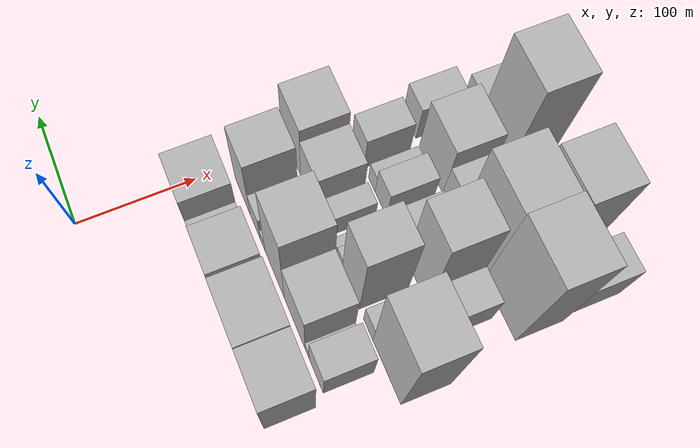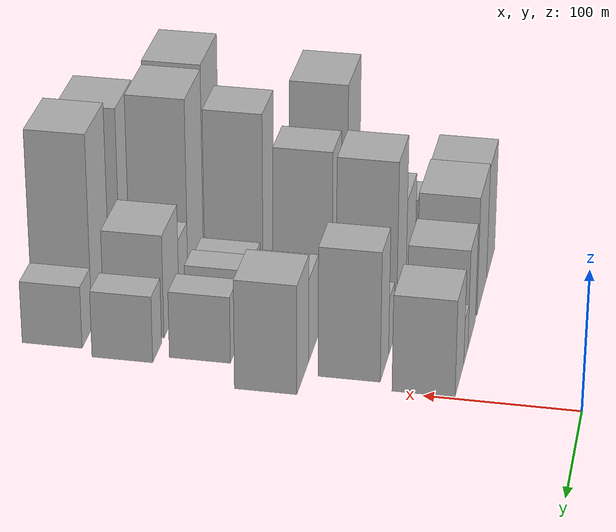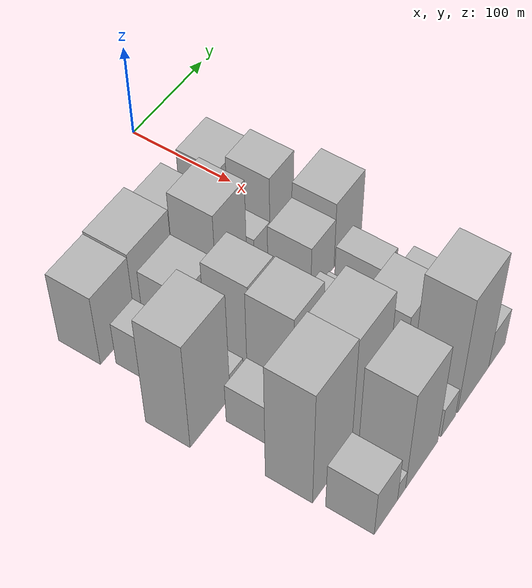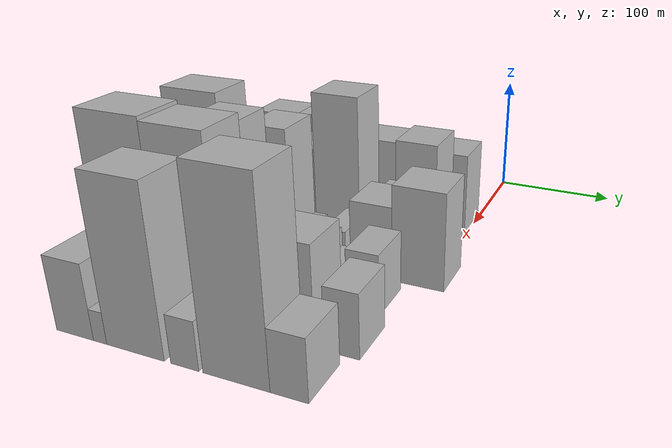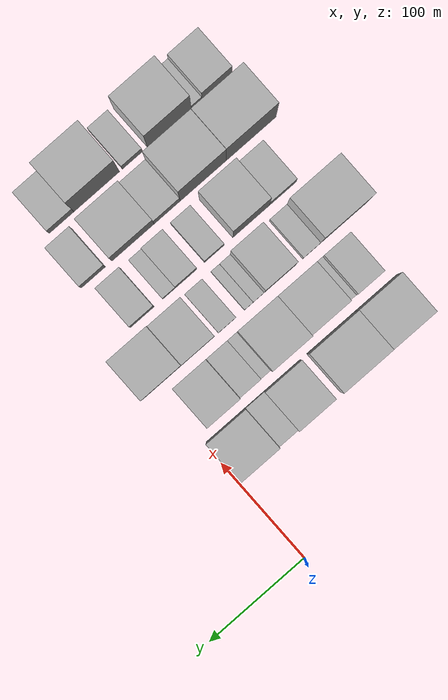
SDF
<sdf version="1.6">
 <world name="default">
  <model name="building_22">
   <static>1</static>
   <pose>100.0000 -179.8507 0 0.000000 0.000000 0.000000</pose>
   <link name="link">
    <pose>0 0 42.00 0 0 0</pose>
    <collision name="collision"><geometry><box><size>40.0000 44.0624 84.0000</size></box></geometry></collision>
    <visual name="visual">
     <cast_shadows>0</cast_shadows>
     <geometry><box><size>40.0000 44.0624 84.0000</size></box></geometry>
     <material>
      <script>
       <uri>model://HANNAS_wall/materials/scripts</uri>
       <uri>model://HANNAS_wall/materials/textures</uri>
       <name>vrc/HANNAS_wall</name>
      </script>
     </material>
    </visual>
   </link>
  </model>
  <model name="building_23">
   <static>1</static>
   <pose>100.0000 -132.6121 0 0.000000 0.000000 0.000000</pose>
   <link name="link">
    <pose>0 0 43.50 0 0 0</pose>
    <collision name="collision"><geometry><box><size>40.0000 50.4148 87.0000</size></box></geometry></collision>
    <visual name="visual">
     <cast_shadows>0</cast_shadows>
     <geometry><box><size>40.0000 50.4148 87.0000</size></box></geometry>
     <material>
      <script>
       <uri>model://HANNAS_wall/materials/scripts</uri>
       <uri>model://HANNAS_wall/materials/textures</uri>
       <name>vrc/HANNAS_wall</name>
      </script>
     </material>
    </visual>
   </link>
  </model>
  <model name="building_24">
   <static>1</static>
   <pose>100.0000 -81.5490 0 0.000000 0.000000 0.000000</pose>
   <link name="link">
    <pose>0 0 36.00 0 0 0</pose>
    <collision name="collision"><geometry><box><size>40.0000 37.7114 72.0000</size></box></geometry></collision>
    <visual name="visual">
     <cast_shadows>0</cast_shadows>
     <geometry><box><size>40.0000 37.7114 72.0000</size></box></geometry>
     <material>
      <script>
       <uri>model://HANNAS_wall/materials/scripts</uri>
       <uri>model://HANNAS_wall/materials/textures</uri>
       <name>vrc/HANNAS_wall</name>
      </script>
     </material>
    </visual>
   </link>
  </model>
  <model name="building_25">
   <static>1</static>
   <pose>100.0000 -52.9410 0 0.000000 0.000000 0.000000</pose>
   <link name="link">
    <pose>0 0 16.50 0 0 0</pose>
    <collision name="collision"><geometry><box><size>40.0000 19.5046 33.0000</size></box></geometry></collision>
    <visual name="visual">
     <cast_shadows>0</cast_shadows>
     <geometry><box><size>40.0000 19.5046 33.0000</size></box></geometry>
     <material>
      <script>
       <uri>model://HANNAS_wall/materials/scripts</uri>
       <uri>model://HANNAS_wall/materials/textures</uri>
       <name>vrc/HANNAS_wall</name>
      </script>
     </material>
    </visual>
   </link>
  </model>
  <model name="building_26">
   <static>1</static>
   <pose>100.0000 -22.6887 0 0.000000 0.000000 0.000000</pose>
   <link name="link">
    <pose>0 0 34.50 0 0 0</pose>
    <collision name="collision"><geometry><box><size>40.0000 40.9999 69.0000</size></box></geometry></collision>
    <visual name="visual">
     <cast_shadows>0</cast_shadows>
     <geometry><box><size>40.0000 40.9999 69.0000</size></box></geometry>
     <material>
      <script>
       <uri>model://HANNAS_wall/materials/scripts</uri>
       <uri>model://HANNAS_wall/materials/textures</uri>
       <name>vrc/HANNAS_wall</name>
      </script>
     </material>
    </visual>
   </link>
  </model>
  <model name="building_69">
   <static>1</static>
   <pose>149.0000 -180.6209 0 0.000000 0.000000 0.000000</pose>
   <link name="link">
    <pose>0 0 25.50 0 0 0</pose>
    <collision name="collision"><geometry><box><size>40.0000 27.4931 51.0000</size></box></geometry></collision>
    <visual name="visual">
     <cast_shadows>0</cast_shadows>
     <geometry><box><size>40.0000 27.4931 51.0000</size></box></geometry>
     <material>
      <script>
       <uri>model://HANNAS_wall/materials/scripts</uri>
       <uri>model://HANNAS_wall/materials/textures</uri>
       <name>vrc/HANNAS_wall</name>
      </script>
     </material>
    </visual>
   </link>
  </model>
  <model name="building_70">
   <static>1</static>
   <pose>149.0000 -162.8369 0 0.000000 0.000000 0.000000</pose>
   <link name="link">
    <pose>0 0 9.00 0 0 0</pose>
    <collision name="collision"><geometry><box><size>40.0000 8.0749 18.0000</size></box></geometry></collision>
    <visual name="visual">
     <cast_shadows>0</cast_shadows>
     <geometry><box><size>40.0000 8.0749 18.0000</size></box></geometry>
     <material>
      <script>
       <uri>model://HANNAS_wall/materials/scripts</uri>
       <uri>model://HANNAS_wall/materials/textures</uri>
       <name>vrc/HANNAS_wall</name>
      </script>
     </material>
    </visual>
   </link>
  </model>
  <model name="building_71">
   <static>1</static>
   <pose>149.0000 -138.1704 0 0.000000 0.000000 0.000000</pose>
   <link name="link">
    <pose>0 0 37.50 0 0 0</pose>
    <collision name="collision"><geometry><box><size>40.0000 41.2582 75.0000</size></box></geometry></collision>
    <visual name="visual">
     <cast_shadows>0</cast_shadows>
     <geometry><box><size>40.0000 41.2582 75.0000</size></box></geometry>
     <material>
      <script>
       <uri>model://HANNAS_wall/materials/scripts</uri>
       <uri>model://HANNAS_wall/materials/textures</uri>
       <name>vrc/HANNAS_wall</name>
      </script>
     </material>
    </visual>
   </link>
  </model>
  <model name="building_72">
   <static>1</static>
   <pose>149.0000 -97.4613 0 0.000000 0.000000 0.000000</pose>
   <link name="link">
    <pose>0 0 61.50 0 0 0</pose>
    <collision name="collision"><geometry><box><size>40.0000 40.1599 123.0000</size></box></geometry></collision>
    <visual name="visual">
     <cast_shadows>0</cast_shadows>
     <geometry><box><size>40.0000 40.1599 123.0000</size></box></geometry>
     <material>
      <script>
       <uri>model://HANNAS_wall/materials/scripts</uri>
       <uri>model://HANNAS_wall/materials/textures</uri>
       <name>vrc/HANNAS_wall</name>
      </script>
     </material>
    </visual>
   </link>
  </model>
  <model name="building_73">
   <static>1</static>
   <pose>149.0000 -72.3114 0 0.000000 0.000000 0.000000</pose>
   <link name="link">
    <pose>0 0 10.50 0 0 0</pose>
    <collision name="collision"><geometry><box><size>40.0000 10.1401 21.0000</size></box></geometry></collision>
    <visual name="visual">
     <cast_shadows>0</cast_shadows>
     <geometry><box><size>40.0000 10.1401 21.0000</size></box></geometry>
     <material>
      <script>
       <uri>model://HANNAS_wall/materials/scripts</uri>
       <uri>model://HANNAS_wall/materials/textures</uri>
       <name>vrc/HANNAS_wall</name>
      </script>
     </material>
    </visual>
   </link>
  </model>
  <model name="building_74">
   <static>1</static>
   <pose>149.0000 -56.3199 0 0.000000 0.000000 0.000000</pose>
   <link name="link">
    <pose>0 0 21.00 0 0 0</pose>
    <collision name="collision"><geometry><box><size>40.0000 21.8428 42.0000</size></box></geometry></collision>
    <visual name="visual">
     <cast_shadows>0</cast_shadows>
     <geometry><box><size>40.0000 21.8428 42.0000</size></box></geometry>
     <material>
      <script>
       <uri>model://HANNAS_wall/materials/scripts</uri>
       <uri>model://HANNAS_wall/materials/textures</uri>
       <name>vrc/HANNAS_wall</name>
      </script>
     </material>
    </visual>
   </link>
  </model>
  <model name="building_75">
   <static>1</static>
   <pose>149.0000 -28.4880 0 0.000000 0.000000 0.000000</pose>
   <link name="link">
    <pose>0 0 46.50 0 0 0</pose>
    <collision name="collision"><geometry><box><size>40.0000 33.8210 93.0000</size></box></geometry></collision>
    <visual name="visual">
     <cast_shadows>0</cast_shadows>
     <geometry><box><size>40.0000 33.8210 93.0000</size></box></geometry>
     <material>
      <script>
       <uri>model://HANNAS_wall/materials/scripts</uri>
       <uri>model://HANNAS_wall/materials/textures</uri>
       <name>vrc/HANNAS_wall</name>
      </script>
     </material>
    </visual>
   </link>
  </model>
  <model name="building_118">
   <static>1</static>
   <pose>198.0000 -197.8509 0 0.000000 0.000000 0.000000</pose>
   <link name="link">
    <pose>0 0 64.50 0 0 0</pose>
    <collision name="collision"><geometry><box><size>40.0000 50.9091 129.0000</size></box></geometry></collision>
    <visual name="visual">
     <cast_shadows>0</cast_shadows>
     <geometry><box><size>40.0000 50.9091 129.0000</size></box></geometry>
     <material>
      <script>
       <uri>model://HANNAS_wall/materials/scripts</uri>
       <uri>model://HANNAS_wall/materials/textures</uri>
       <name>vrc/HANNAS_wall</name>
      </script>
     </material>
    </visual>
   </link>
  </model>
  <model name="building_119">
   <static>1</static>
   <pose>198.0000 -163.4503 0 0.000000 0.000000 0.000000</pose>
   <link name="link">
    <pose>0 0 15.00 0 0 0</pose>
    <collision name="collision"><geometry><box><size>40.0000 17.8922 30.0000</size></box></geometry></collision>
    <visual name="visual">
     <cast_shadows>0</cast_shadows>
     <geometry><box><size>40.0000 17.8922 30.0000</size></box></geometry>
     <material>
      <script>
       <uri>model://HANNAS_wall/materials/scripts</uri>
       <uri>model://HANNAS_wall/materials/textures</uri>
       <name>vrc/HANNAS_wall</name>
      </script>
     </material>
    </visual>
   </link>
  </model>
  <model name="building_120">
   <static>1</static>
   <pose>198.0000 -130.0346 0 0.000000 0.000000 0.000000</pose>
   <link name="link">
    <pose>0 0 54.00 0 0 0</pose>
    <collision name="collision"><geometry><box><size>40.0000 32.9392 108.0000</size></box></geometry></collision>
    <visual name="visual">
     <cast_shadows>0</cast_shadows>
     <geometry><box><size>40.0000 32.9392 108.0000</size></box></geometry>
     <material>
      <script>
       <uri>model://HANNAS_wall/materials/scripts</uri>
       <uri>model://HANNAS_wall/materials/textures</uri>
       <name>vrc/HANNAS_wall</name>
      </script>
     </material>
    </visual>
   </link>
  </model>
  <model name="building_121">
   <static>1</static>
   <pose>198.0000 -107.9346 0 0.000000 0.000000 0.000000</pose>
   <link name="link">
    <pose>0 0 12.00 0 0 0</pose>
    <collision name="collision"><geometry><box><size>40.0000 11.2608 24.0000</size></box></geometry></collision>
    <visual name="visual">
     <cast_shadows>0</cast_shadows>
     <geometry><box><size>40.0000 11.2608 24.0000</size></box></geometry>
     <material>
      <script>
       <uri>model://HANNAS_wall/materials/scripts</uri>
       <uri>model://HANNAS_wall/materials/textures</uri>
       <name>vrc/HANNAS_wall</name>
      </script>
     </material>
    </visual>
   </link>
  </model>
  <model name="building_122">
   <static>1</static>
   <pose>198.0000 -97.7807 0 0.000000 0.000000 0.000000</pose>
   <link name="link">
    <pose>0 0 10.50 0 0 0</pose>
    <collision name="collision"><geometry><box><size>40.0000 9.0470 21.0000</size></box></geometry></collision>
    <visual name="visual">
     <cast_shadows>0</cast_shadows>
     <geometry><box><size>40.0000 9.0470 21.0000</size></box></geometry>
     <material>
      <script>
       <uri>model://HANNAS_wall/materials/scripts</uri>
       <uri>model://HANNAS_wall/materials/textures</uri>
       <name>vrc/HANNAS_wall</name>
      </script>
     </material>
    </visual>
   </link>
  </model>
  <model name="building_123">
   <static>1</static>
   <pose>198.0000 -75.1374 0 0.000000 0.000000 0.000000</pose>
   <link name="link">
    <pose>0 0 16.50 0 0 0</pose>
    <collision name="collision"><geometry><box><size>40.0000 18.2395 33.0000</size></box></geometry></collision>
    <visual name="visual">
     <cast_shadows>0</cast_shadows>
     <geometry><box><size>40.0000 18.2395 33.0000</size></box></geometry>
     <material>
      <script>
       <uri>model://HANNAS_wall/materials/scripts</uri>
       <uri>model://HANNAS_wall/materials/textures</uri>
       <name>vrc/HANNAS_wall</name>
      </script>
     </material>
    </visual>
   </link>
  </model>
  <model name="building_124">
   <static>1</static>
   <pose>198.0000 -44.9687 0 0.000000 0.000000 0.000000</pose>
   <link name="link">
    <pose>0 0 30.00 0 0 0</pose>
    <collision name="collision"><geometry><box><size>40.0000 34.0979 60.0000</size></box></geometry></collision>
    <visual name="visual">
     <cast_shadows>0</cast_shadows>
     <geometry><box><size>40.0000 34.0979 60.0000</size></box></geometry>
     <material>
      <script>
       <uri>model://HANNAS_wall/materials/scripts</uri>
       <uri>model://HANNAS_wall/materials/textures</uri>
       <name>vrc/HANNAS_wall</name>
      </script>
     </material>
    </visual>
   </link>
  </model>
  <model name="building_125">
   <static>1</static>
   <pose>198.0000 -7.3952 0 0.000000 0.000000 0.000000</pose>
   <link name="link">
    <pose>0 0 39.00 0 0 0</pose>
    <collision name="collision"><geometry><box><size>40.0000 41.0492 78.0000</size></box></geometry></collision>
    <visual name="visual">
     <cast_shadows>0</cast_shadows>
     <geometry><box><size>40.0000 41.0492 78.0000</size></box></geometry>
     <material>
      <script>
       <uri>model://HANNAS_wall/materials/scripts</uri>
       <uri>model://HANNAS_wall/materials/textures</uri>
       <name>vrc/HANNAS_wall</name>
      </script>
     </material>
    </visual>
   </link>
  </model>
  <model name="building_164">
   <static>1</static>
   <pose>247.0000 -176.4259 0 0.000000 0.000000 0.000000</pose>
   <link name="link">
    <pose>0 0 24.00 0 0 0</pose>
    <collision name="collision"><geometry><box><size>40.0000 28.2220 48.0000</size></box></geometry></collision>
    <visual name="visual">
     <cast_shadows>0</cast_shadows>
     <geometry><box><size>40.0000 28.2220 48.0000</size></box></geometry>
     <material>
      <script>
       <uri>model://HANNAS_wall/materials/scripts</uri>
       <uri>model://HANNAS_wall/materials/textures</uri>
       <name>vrc/HANNAS_wall</name>
      </script>
     </material>
    </visual>
   </link>
  </model>
  <model name="building_165">
   <static>1</static>
   <pose>247.0000 -143.2206 0 0.000000 0.000000 0.000000</pose>
   <link name="link">
    <pose>0 0 63.00 0 0 0</pose>
    <collision name="collision"><geometry><box><size>40.0000 38.1886 126.0000</size></box></geometry></collision>
    <visual name="visual">
     <cast_shadows>0</cast_shadows>
     <geometry><box><size>40.0000 38.1886 126.0000</size></box></geometry>
     <material>
      <script>
       <uri>model://HANNAS_wall/materials/scripts</uri>
       <uri>model://HANNAS_wall/materials/textures</uri>
       <name>vrc/HANNAS_wall</name>
      </script>
     </material>
    </visual>
   </link>
  </model>
  <model name="building_166">
   <static>1</static>
   <pose>247.0000 -104.8107 0 0.000000 0.000000 0.000000</pose>
   <link name="link">
    <pose>0 0 18.00 0 0 0</pose>
    <collision name="collision"><geometry><box><size>40.0000 20.6312 36.0000</size></box></geometry></collision>
    <visual name="visual">
     <cast_shadows>0</cast_shadows>
     <geometry><box><size>40.0000 20.6312 36.0000</size></box></geometry>
     <material>
      <script>
       <uri>model://HANNAS_wall/materials/scripts</uri>
       <uri>model://HANNAS_wall/materials/textures</uri>
       <name>vrc/HANNAS_wall</name>
      </script>
     </material>
    </visual>
   </link>
  </model>
  <model name="building_167">
   <static>1</static>
   <pose>247.0000 -75.2744 0 0.000000 0.000000 0.000000</pose>
   <link name="link">
    <pose>0 0 21.00 0 0 0</pose>
    <collision name="collision"><geometry><box><size>40.0000 22.4414 42.0000</size></box></geometry></collision>
    <visual name="visual">
     <cast_shadows>0</cast_shadows>
     <geometry><box><size>40.0000 22.4414 42.0000</size></box></geometry>
     <material>
      <script>
       <uri>model://HANNAS_wall/materials/scripts</uri>
       <uri>model://HANNAS_wall/materials/textures</uri>
       <name>vrc/HANNAS_wall</name>
      </script>
     </material>
    </visual>
   </link>
  </model>
  <model name="building_168">
   <static>1</static>
   <pose>247.0000 -57.4160 0 0.000000 0.000000 0.000000</pose>
   <link name="link">
    <pose>0 0 13.50 0 0 0</pose>
    <collision name="collision"><geometry><box><size>40.0000 13.2754 27.0000</size></box></geometry></collision>
    <visual name="visual">
     <cast_shadows>0</cast_shadows>
     <geometry><box><size>40.0000 13.2754 27.0000</size></box></geometry>
     <material>
      <script>
       <uri>model://HANNAS_wall/materials/scripts</uri>
       <uri>model://HANNAS_wall/materials/textures</uri>
       <name>vrc/HANNAS_wall</name>
      </script>
     </material>
    </visual>
   </link>
  </model>
  <model name="building_169">
   <static>1</static>
   <pose>247.0000 -29.4178 0 0.000000 0.000000 0.000000</pose>
   <link name="link">
    <pose>0 0 24.00 0 0 0</pose>
    <collision name="collision"><geometry><box><size>40.0000 24.7210 48.0000</size></box></geometry></collision>
    <visual name="visual">
     <cast_shadows>0</cast_shadows>
     <geometry><box><size>40.0000 24.7210 48.0000</size></box></geometry>
     <material>
      <script>
       <uri>model://HANNAS_wall/materials/scripts</uri>
       <uri>model://HANNAS_wall/materials/textures</uri>
       <name>vrc/HANNAS_wall</name>
      </script>
     </material>
    </visual>
   </link>
  </model>
  <model name="building_215">
   <static>1</static>
   <pose>296.0000 -186.3399 0 0.000000 0.000000 0.000000</pose>
   <link name="link">
    <pose>0 0 70.50 0 0 0</pose>
    <collision name="collision"><geometry><box><size>40.0000 52.1451 141.0000</size></box></geometry></collision>
    <visual name="visual">
     <cast_shadows>0</cast_shadows>
     <geometry><box><size>40.0000 52.1451 141.0000</size></box></geometry>
     <material>
      <script>
       <uri>model://HANNAS_wall/materials/scripts</uri>
       <uri>model://HANNAS_wall/materials/textures</uri>
       <name>vrc/HANNAS_wall</name>
      </script>
     </material>
    </visual>
   </link>
  </model>
  <model name="building_216">
   <static>1</static>
   <pose>296.0000 -136.1982 0 0.000000 0.000000 0.000000</pose>
   <link name="link">
    <pose>0 0 69.00 0 0 0</pose>
    <collision name="collision"><geometry><box><size>40.0000 48.1383 138.0000</size></box></geometry></collision>
    <visual name="visual">
     <cast_shadows>0</cast_shadows>
     <geometry><box><size>40.0000 48.1383 138.0000</size></box></geometry>
     <material>
      <script>
       <uri>model://HANNAS_wall/materials/scripts</uri>
       <uri>model://HANNAS_wall/materials/textures</uri>
       <name>vrc/HANNAS_wall</name>
      </script>
     </material>
    </visual>
   </link>
  </model>
  <model name="building_217">
   <static>1</static>
   <pose>296.0000 -98.4632 0 0.000000 0.000000 0.000000</pose>
   <link name="link">
    <pose>0 0 24.00 0 0 0</pose>
    <collision name="collision"><geometry><box><size>40.0000 27.3317 48.0000</size></box></geometry></collision>
    <visual name="visual">
     <cast_shadows>0</cast_shadows>
     <geometry><box><size>40.0000 27.3317 48.0000</size></box></geometry>
     <material>
      <script>
       <uri>model://HANNAS_wall/materials/scripts</uri>
       <uri>model://HANNAS_wall/materials/textures</uri>
       <name>vrc/HANNAS_wall</name>
      </script>
     </material>
    </visual>
   </link>
  </model>
  <model name="building_218">
   <static>1</static>
   <pose>296.0000 -62.7265 0 0.000000 0.000000 0.000000</pose>
   <link name="link">
    <pose>0 0 37.50 0 0 0</pose>
    <collision name="collision"><geometry><box><size>40.0000 44.1416 75.0000</size></box></geometry></collision>
    <visual name="visual">
     <cast_shadows>0</cast_shadows>
     <geometry><box><size>40.0000 44.1416 75.0000</size></box></geometry>
     <material>
      <script>
       <uri>model://HANNAS_wall/materials/scripts</uri>
       <uri>model://HANNAS_wall/materials/textures</uri>
       <name>vrc/HANNAS_wall</name>
      </script>
     </material>
    </visual>
   </link>
  </model>
  <model name="building_219">
   <static>1</static>
   <pose>296.0000 -21.0924 0 0.000000 0.000000 0.000000</pose>
   <link name="link">
    <pose>0 0 24.00 0 0 0</pose>
    <collision name="collision"><geometry><box><size>40.0000 25.1266 48.0000</size></box></geometry></collision>
    <visual name="visual">
     <cast_shadows>0</cast_shadows>
     <geometry><box><size>40.0000 25.1266 48.0000</size></box></geometry>
     <material>
      <script>
       <uri>model://HANNAS_wall/materials/scripts</uri>
       <uri>model://HANNAS_wall/materials/textures</uri>
       <name>vrc/HANNAS_wall</name>
      </script>
     </material>
    </visual>
   </link>
  </model>
  <model name="building_262">
   <static>1</static>
   <pose>345.0000 -193.6404 0 0.000000 0.000000 0.000000</pose>
   <link name="link">
    <pose>0 0 28.50 0 0 0</pose>
    <collision name="collision"><geometry><box><size>40.0000 31.6422 57.0000</size></box></geometry></collision>
    <visual name="visual">
     <cast_shadows>0</cast_shadows>
     <geometry><box><size>40.0000 31.6422 57.0000</size></box></geometry>
     <material>
      <script>
       <uri>model://HANNAS_wall/materials/scripts</uri>
       <uri>model://HANNAS_wall/materials/textures</uri>
       <name>vrc/HANNAS_wall</name>
      </script>
     </material>
    </visual>
   </link>
  </model>
  <model name="building_263">
   <static>1</static>
   <pose>345.0000 -172.2782 0 0.000000 0.000000 0.000000</pose>
   <link name="link">
    <pose>0 0 12.00 0 0 0</pose>
    <collision name="collision"><geometry><box><size>40.0000 11.0822 24.0000</size></box></geometry></collision>
    <visual name="visual">
     <cast_shadows>0</cast_shadows>
     <geometry><box><size>40.0000 11.0822 24.0000</size></box></geometry>
     <material>
      <script>
       <uri>model://HANNAS_wall/materials/scripts</uri>
       <uri>model://HANNAS_wall/materials/textures</uri>
       <name>vrc/HANNAS_wall</name>
      </script>
     </material>
    </visual>
   </link>
  </model>
  <model name="building_264">
   <static>1</static>
   <pose>345.0000 -143.7290 0 0.000000 0.000000 0.000000</pose>
   <link name="link">
    <pose>0 0 61.50 0 0 0</pose>
    <collision name="collision"><geometry><box><size>40.0000 46.0163 123.0000</size></box></geometry></collision>
    <visual name="visual">
     <cast_shadows>0</cast_shadows>
     <geometry><box><size>40.0000 46.0163 123.0000</size></box></geometry>
     <material>
      <script>
       <uri>model://HANNAS_wall/materials/scripts</uri>
       <uri>model://HANNAS_wall/materials/textures</uri>
       <name>vrc/HANNAS_wall</name>
      </script>
     </material>
    </visual>
   </link>
  </model>
  <model name="building_265">
   <static>1</static>
   <pose>345.0000 -105.1292 0 0.000000 0.000000 0.000000</pose>
   <link name="link">
    <pose>0 0 18.00 0 0 0</pose>
    <collision name="collision"><geometry><box><size>40.0000 21.1832 36.0000</size></box></geometry></collision>
    <visual name="visual">
     <cast_shadows>0</cast_shadows>
     <geometry><box><size>40.0000 21.1832 36.0000</size></box></geometry>
     <material>
      <script>
       <uri>model://HANNAS_wall/materials/scripts</uri>
       <uri>model://HANNAS_wall/materials/textures</uri>
       <name>vrc/HANNAS_wall</name>
      </script>
     </material>
    </visual>
   </link>
  </model>
  <model name="building_266">
   <static>1</static>
   <pose>345.0000 -67.6860 0 0.000000 0.000000 0.000000</pose>
   <link name="link">
    <pose>0 0 70.50 0 0 0</pose>
    <collision name="collision"><geometry><box><size>40.0000 47.7031 141.0000</size></box></geometry></collision>
    <visual name="visual">
     <cast_shadows>0</cast_shadows>
     <geometry><box><size>40.0000 47.7031 141.0000</size></box></geometry>
     <material>
      <script>
       <uri>model://HANNAS_wall/materials/scripts</uri>
       <uri>model://HANNAS_wall/materials/textures</uri>
       <name>vrc/HANNAS_wall</name>
      </script>
     </material>
    </visual>
   </link>
  </model>
  <model name="building_267">
   <static>1</static>
   <pose>345.0000 -30.9026 0 0.000000 0.000000 0.000000</pose>
   <link name="link">
    <pose>0 0 22.50 0 0 0</pose>
    <collision name="collision"><geometry><box><size>40.0000 25.8637 45.0000</size></box></geometry></collision>
    <visual name="visual">
     <cast_shadows>0</cast_shadows>
     <geometry><box><size>40.0000 25.8637 45.0000</size></box></geometry>
     <material>
      <script>
       <uri>model://HANNAS_wall/materials/scripts</uri>
       <uri>model://HANNAS_wall/materials/textures</uri>
       <name>vrc/HANNAS_wall</name>
      </script>
     </material>
    </visual>
   </link>
  </model>
 </world>
</sdf>
